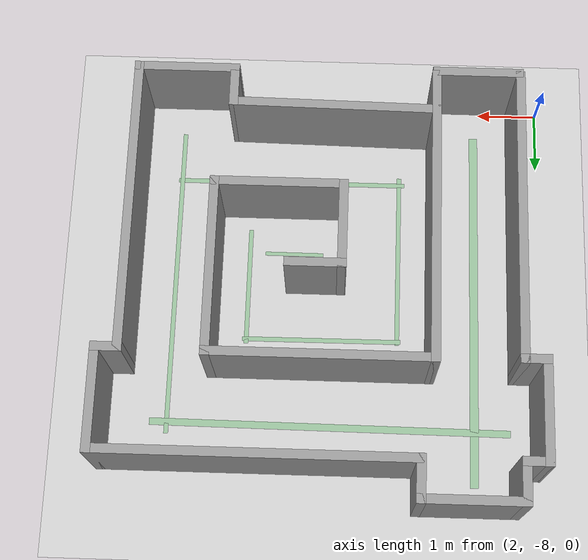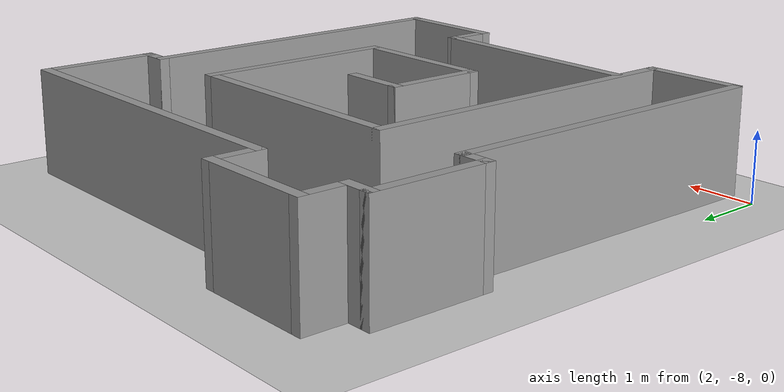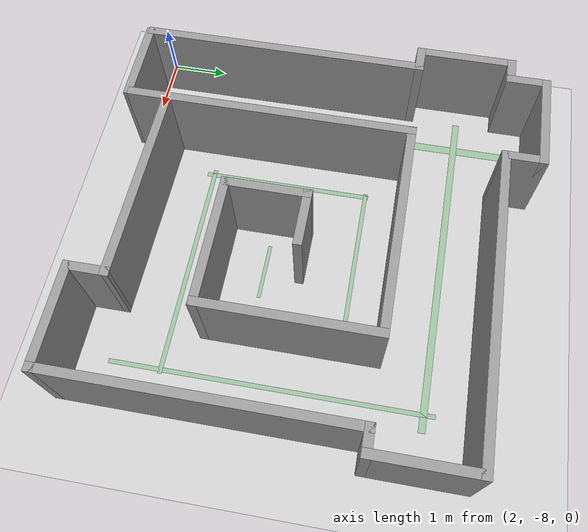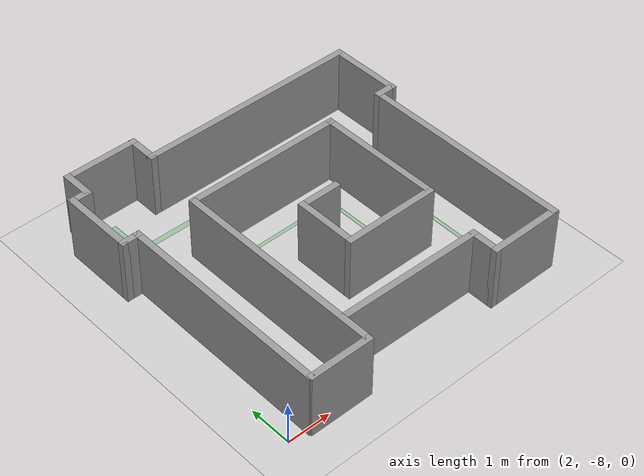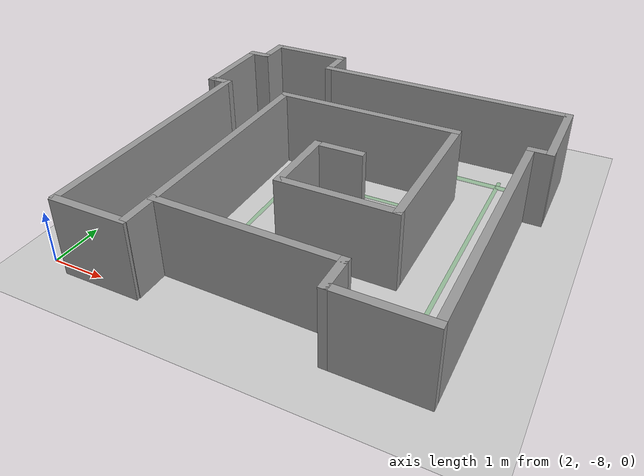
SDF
<sdf version="1.7">
 <world name="default">
  <model name="ground_plane">
   <static>1</static>
   <link name="link">
    <collision name="collision">
     <geometry><plane><normal>0 0 1</normal><size>100 100</size></plane></geometry>
     <surface>
      <contact><collide_bitmask>65535</collide_bitmask></contact>
      <friction><ode><mu>100</mu><mu2>50</mu2></ode></friction>
     </surface>
    </collision>
    <visual name="visual">
     <cast_shadows>0</cast_shadows>
     <geometry><plane><normal>0 0 1</normal><size>100 100</size></plane></geometry>
     <material>
      <script><uri>file://media/materials/scripts/gazebo.material</uri><name>Gazebo/Grey</name></script>
     </material>
    </visual>
   </link>
  </model>
  <model name="map_1">
   <pose>5.62551 -4.52661 0 0 -0 0</pose>
   <link name="Wall_0">
    <collision name="Wall_0_Collision">
     <geometry><box><size>5 0.15 1.5</size></box></geometry>
     <pose>0 0 0.75 0 -0 0</pose>
    </collision>
    <visual name="Wall_0_Visual">
     <pose>0 0 0.75 0 -0 0</pose>
     <geometry><box><size>5 0.15 1.5</size></box></geometry>
     <material>
      <script><uri>file://media/materials/scripts/gazebo.material</uri><name>Gazebo/Grey</name></script>
      <ambient>1 1 1 1</ambient>
     </material>
     <meta><layer>0</layer></meta>
    </visual>
    <pose>-3.175 -1.10709 0 0 -0 1.5708</pose>
   </link>
   <link name="Wall_1">
    <collision name="Wall_1_Collision">
     <geometry><box><size>0.5 0.15 1.5</size></box></geometry>
     <pose>0 0 0.75 0 -0 0</pose>
    </collision>
    <visual name="Wall_1_Visual">
     <pose>0 0 0.75 0 -0 0</pose>
     <geometry><box><size>0.5 0.15 1.5</size></box></geometry>
     <material>
      <script><uri>file://media/materials/scripts/gazebo.material</uri><name>Gazebo/Grey</name></script>
      <ambient>1 1 1 1</ambient>
     </material>
     <meta><layer>0</layer></meta>
    </visual>
    <pose>-3.35 1.31791 0 0 -0 3.14159</pose>
   </link>
   <link name="Wall_10">
    <collision name="Wall_10_Collision">
     <geometry><box><size>5.25 0.15 1.5</size></box></geometry>
     <pose>0 0 0.75 0 -0 0</pose>
    </collision>
    <visual name="Wall_10_Visual">
     <pose>0 0 0.75 0 -0 0</pose>
     <geometry><box><size>5.25 0.15 1.5</size></box></geometry>
     <material>
      <script><uri>file://media/materials/scripts/gazebo.material</uri><name>Gazebo/Grey</name></script>
      <ambient>1 1 1 1</ambient>
     </material>
     <meta><layer>0</layer></meta>
    </visual>
    <pose>0.975 2.91791 0 0 -0 0</pose>
   </link>
   <link name="Wall_11">
    <collision name="Wall_11_Collision">
     <geometry><box><size>1.75 0.15 1.5</size></box></geometry>
     <pose>0 0 0.75 0 -0 0</pose>
    </collision>
    <visual name="Wall_11_Visual">
     <pose>0 0 0.75 0 -0 0</pose>
     <geometry><box><size>1.75 0.15 1.5</size></box></geometry>
     <material>
      <script><uri>file://media/materials/scripts/gazebo.material</uri><name>Gazebo/Grey</name></script>
      <ambient>1 1 1 1</ambient>
     </material>
     <meta><layer>0</layer></meta>
    </visual>
    <pose>3.525 2.11791 0 0 -0 -1.5708</pose>
   </link>
   <link name="Wall_12">
    <collision name="Wall_12_Collision">
     <geometry><box><size>0.5 0.15 1.5</size></box></geometry>
     <pose>0 0 0.75 0 -0 0</pose>
    </collision>
    <visual name="Wall_12_Visual">
     <pose>0 0 0.75 0 -0 0</pose>
     <geometry><box><size>0.5 0.15 1.5</size></box></geometry>
     <material>
      <script><uri>file://media/materials/scripts/gazebo.material</uri><name>Gazebo/Grey</name></script>
      <ambient>1 1 1 1</ambient>
     </material>
     <meta><layer>0</layer></meta>
    </visual>
    <pose>3.35 1.31791 0 0 -0 3.14159</pose>
   </link>
   <link name="Wall_13">
    <collision name="Wall_13_Collision">
     <geometry><box><size>5 0.15 1.5</size></box></geometry>
     <pose>0 0 0.75 0 -0 0</pose>
    </collision>
    <visual name="Wall_13_Visual">
     <pose>0 0 0.75 0 -0 0</pose>
     <geometry><box><size>5 0.15 1.5</size></box></geometry>
     <material>
      <script><uri>file://media/materials/scripts/gazebo.material</uri><name>Gazebo/Grey</name></script>
      <ambient>1 1 1 1</ambient>
     </material>
     <meta><layer>0</layer></meta>
    </visual>
    <pose>3.175 -1.10709 0 0 -0 -1.5708</pose>
   </link>
   <link name="Wall_14">
    <collision name="Wall_14_Collision">
     <geometry><box><size>1.75 0.15 1.5</size></box></geometry>
     <pose>0 0 0.75 0 -0 0</pose>
    </collision>
    <visual name="Wall_14_Visual">
     <pose>0 0 0.75 0 -0 0</pose>
     <geometry><box><size>1.75 0.15 1.5</size></box></geometry>
     <material>
      <script><uri>file://media/materials/scripts/gazebo.material</uri><name>Gazebo/Grey</name></script>
      <ambient>1 1 1 1</ambient>
     </material>
     <meta><layer>0</layer></meta>
    </visual>
    <pose>2.375 -3.53209 0 0 -0 3.14159</pose>
   </link>
   <link name="Wall_15">
    <collision name="Wall_15_Collision">
     <geometry><box><size>0.75 0.15 1.5</size></box></geometry>
     <pose>0 0 0.75 0 -0 0</pose>
    </collision>
    <visual name="Wall_15_Visual">
     <pose>0 0 0.75 0 -0 0</pose>
     <geometry><box><size>0.75 0.15 1.5</size></box></geometry>
     <material>
      <script><uri>file://media/materials/scripts/gazebo.material</uri><name>Gazebo/Grey</name></script>
      <ambient>1 1 1 1</ambient>
     </material>
     <meta><layer>0</layer></meta>
    </visual>
    <pose>1.575 -3.23209 0 0 -0 1.5708</pose>
   </link>
   <link name="Wall_18">
    <collision name="Wall_18_Collision">
     <geometry><box><size>5 0.15 1.5</size></box></geometry>
     <pose>0 0 0.75 0 -0 0</pose>
    </collision>
    <visual name="Wall_18_Visual">
     <pose>0 0 0.75 0 -0 0</pose>
     <geometry><box><size>5 0.15 1.5</size></box></geometry>
     <material>
      <script><uri>file://media/materials/scripts/gazebo.material</uri><name>Gazebo/Grey</name></script>
      <ambient>1 1 1 1</ambient>
     </material>
     <meta><layer>0</layer></meta>
    </visual>
    <pose>-1.787 -1.08609 0 0 -0 1.5708</pose>
   </link>
   <link name="Wall_19">
    <collision name="Wall_19_Collision">
     <geometry><box><size>3.75 0.15 1.5</size></box></geometry>
     <pose>0 0 0.75 0 -0 0</pose>
    </collision>
    <visual name="Wall_19_Visual">
     <pose>0 0 0.75 0 -0 0</pose>
     <geometry><box><size>3.75 0.15 1.5</size></box></geometry>
     <material>
      <script><uri>file://media/materials/scripts/gazebo.material</uri><name>Gazebo/Grey</name></script>
      <ambient>1 1 1 1</ambient>
     </material>
     <meta><layer>0</layer></meta>
    </visual>
    <pose>0.013 1.33891 0 0 -0 0</pose>
   </link>
   <link name="Wall_2">
    <collision name="Wall_2_Collision">
     <geometry><box><size>1.75 0.15 1.5</size></box></geometry>
     <pose>0 0 0.75 0 -0 0</pose>
    </collision>
    <visual name="Wall_2_Visual">
     <pose>0 0 0.75 0 -0 0</pose>
     <geometry><box><size>1.75 0.15 1.5</size></box></geometry>
     <material>
      <script><uri>file://media/materials/scripts/gazebo.material</uri><name>Gazebo/Grey</name></script>
      <ambient>1 1 1 1</ambient>
     </material>
     <meta><layer>0</layer></meta>
    </visual>
    <pose>-3.525 2.11791 0 0 -0 1.5708</pose>
   </link>
   <link name="Wall_20">
    <collision name="Wall_20_Collision">
     <geometry><box><size>3 0.15 1.5</size></box></geometry>
     <pose>0 0 0.75 0 -0 0</pose>
    </collision>
    <visual name="Wall_20_Visual">
     <pose>0 0 0.75 0 -0 0</pose>
     <geometry><box><size>3 0.15 1.5</size></box></geometry>
     <material>
      <script><uri>file://media/materials/scripts/gazebo.material</uri><name>Gazebo/Grey</name></script>
      <ambient>1 1 1 1</ambient>
     </material>
     <meta><layer>0</layer></meta>
    </visual>
    <pose>1.813 -0.086086 0 0 -0 -1.5708</pose>
   </link>
   <link name="Wall_21">
    <collision name="Wall_21_Collision">
     <geometry><box><size>2.25 0.15 1.5</size></box></geometry>
     <pose>0 0 0.75 0 -0 0</pose>
    </collision>
    <visual name="Wall_21_Visual">
     <pose>0 0 0.75 0 -0 0</pose>
     <geometry><box><size>2.25 0.15 1.5</size></box></geometry>
     <material>
      <script><uri>file://media/materials/scripts/gazebo.material</uri><name>Gazebo/Grey</name></script>
      <ambient>1 1 1 1</ambient>
     </material>
     <meta><layer>0</layer></meta>
    </visual>
    <pose>0.763 -1.51109 0 0 -0 3.14159</pose>
   </link>
   <link name="Wall_22">
    <collision name="Wall_22_Collision">
     <geometry><box><size>1.5 0.15 1.5</size></box></geometry>
     <pose>0 0 0.75 0 -0 0</pose>
    </collision>
    <visual name="Wall_22_Visual">
     <pose>0 0 0.75 0 -0 0</pose>
     <geometry><box><size>1.5 0.15 1.5</size></box></geometry>
     <material>
      <script><uri>file://media/materials/scripts/gazebo.material</uri><name>Gazebo/Grey</name></script>
      <ambient>1 1 1 1</ambient>
     </material>
     <meta><layer>0</layer></meta>
    </visual>
    <pose>-0.287 -0.836086 0 0 -0 1.5708</pose>
   </link>
   <link name="Wall_23">
    <collision name="Wall_23_Collision">
     <geometry><box><size>1 0.15 1.5</size></box></geometry>
     <pose>0 0 0.75 0 -0 0</pose>
    </collision>
    <visual name="Wall_23_Visual">
     <pose>0 0 0.75 0 -0 0</pose>
     <geometry><box><size>1 0.15 1.5</size></box></geometry>
     <material>
      <script><uri>file://media/materials/scripts/gazebo.material</uri><name>Gazebo/Grey</name></script>
      <ambient>1 1 1 1</ambient>
     </material>
     <meta><layer>0</layer></meta>
    </visual>
    <pose>0.138 -0.161086 0 0 -0 0</pose>
   </link>
   <link name="Wall_25">
    <collision name="Wall_25_Collision">
     <geometry><box><size>3.49004 0.15 1.5</size></box></geometry>
     <pose>0 0 0.75 0 -0 0</pose>
    </collision>
    <visual name="Wall_25_Visual">
     <pose>0 0 0.75 0 -0 0</pose>
     <geometry><box><size>3.49004 0.15 1.5</size></box></geometry>
     <material>
      <script><uri>file://media/materials/scripts/gazebo.material</uri><name>Gazebo/Grey</name></script>
      <ambient>1 1 1 1</ambient>
     </material>
     <meta><layer>0</layer></meta>
    </visual>
    <pose>-0.0945 -2.90709 0 0 -0 -0.014973</pose>
   </link>
   <link name="Wall_3">
    <collision name="Wall_3_Collision">
     <geometry><box><size>0.5 0.15 1.5</size></box></geometry>
     <pose>0 0 0.75 0 -0 0</pose>
    </collision>
    <visual name="Wall_3_Visual">
     <pose>0 0 0.75 0 -0 0</pose>
     <geometry><box><size>0.5 0.15 1.5</size></box></geometry>
     <material>
      <script><uri>file://media/materials/scripts/gazebo.material</uri><name>Gazebo/Grey</name></script>
      <ambient>1 1 1 1</ambient>
     </material>
     <meta><layer>0</layer></meta>
    </visual>
    <pose>-3.35 2.91791 0 0 -0 0</pose>
   </link>
   <link name="Wall_7">
    <collision name="Wall_7_Collision">
     <geometry><box><size>0.764 0.15 1.5</size></box></geometry>
     <pose>0 0 0.75 0 -0 0</pose>
    </collision>
    <visual name="Wall_7_Visual">
     <pose>0 0 0.75 0 -0 0</pose>
     <geometry><box><size>0.764 0.15 1.5</size></box></geometry>
     <material>
      <script><uri>file://media/materials/scripts/gazebo.material</uri><name>Gazebo/Grey</name></script>
      <ambient>1 1 1 1</ambient>
     </material>
     <meta><layer>0</layer></meta>
    </visual>
    <pose>-3.175 3.22492 0 0 -0 1.5708</pose>
   </link>
   <link name="Wall_8">
    <collision name="Wall_8_Collision">
     <geometry><box><size>1.75 0.15 1.5</size></box></geometry>
     <pose>0 0 0.75 0 -0 0</pose>
    </collision>
    <visual name="Wall_8_Visual">
     <pose>0 0 0.75 0 -0 0</pose>
     <geometry><box><size>1.75 0.15 1.5</size></box></geometry>
     <material>
      <script><uri>file://media/materials/scripts/gazebo.material</uri><name>Gazebo/Grey</name></script>
      <ambient>1 1 1 1</ambient>
     </material>
     <meta><layer>0</layer></meta>
    </visual>
    <pose>-2.375 3.53191 0 0 -0 0</pose>
   </link>
   <link name="Wall_9">
    <collision name="Wall_9_Collision">
     <geometry><box><size>0.764343 0.15 1.5</size></box></geometry>
     <pose>0 0 0.75 0 -0 0</pose>
    </collision>
    <visual name="Wall_9_Visual">
     <pose>0 0 0.75 0 -0 0</pose>
     <geometry><box><size>0.764343 0.15 1.5</size></box></geometry>
     <material>
      <script><uri>file://media/materials/scripts/gazebo.material</uri><name>Gazebo/Grey</name></script>
      <ambient>1 1 1 1</ambient>
     </material>
     <meta><layer>0</layer></meta>
    </visual>
    <pose>-1.575 3.22492 0 0 -0 -1.5708</pose>
   </link>
   <static>1</static>
  </model>
  <model name="wall_chiusura">
   <pose>4.04122 -6.40261 0 0 -0 0</pose>
   <link name="Wall_5">
    <collision name="Wall_5_Collision">
     <geometry><box><size>1.5 0.15 1.5</size></box></geometry>
     <pose>0 0 0.75 0 -0 0</pose>
    </collision>
    <visual name="Wall_5_Visual">
     <pose>0 0 0.75 0 -0 0</pose>
     <geometry><box><size>1.5 0.15 1.5</size></box></geometry>
     <material>
      <script><uri>file://media/materials/scripts/gazebo.material</uri><name>Gazebo/Grey</name></script>
      <ambient>1 1 1 1</ambient>
     </material>
     <meta><layer>0</layer></meta>
    </visual>
    <pose>-0.8875 -1.6975 0 0 -0 0</pose>
   </link>
   <static>1</static>
  </model>
  <model name="map_1_spawn">
   <link name="spawn_1">
    <inertial>
     <mass>0.0217086</mass>
     <inertia>
      <ixx>0.0556801</ixx>
      <ixy>0</ixy>
      <ixz>0</ixz>
      <iyy>7.146e-05</iyy>
      <iyz>0</iyz>
      <izz>0.0557501</izz>
     </inertia>
    </inertial>
    <pose>-2.6628 0.21384 0 0 -0 0</pose>
    <gravity>0</gravity>
    <visual name="visual">
     <geometry><box><size>0.13925 6.14907 0.019742</size></box></geometry>
     <material>
      <lighting>1</lighting>
      <script><uri>file://media/materials/scripts/gazebo.material</uri><name>Gazebo/Green</name></script>
      <shader type="pixel"><normal_map>__default__</normal_map></shader>
      <ambient>0 1 0 1</ambient>
      <diffuse>0 1 0 1</diffuse>
      <specular>0.1 0.1 0.1 1</specular>
      <emissive>0 0 0 1</emissive>
     </material>
     <transparency>0.7</transparency>
    </visual>
   </link>
   <link name="spawn_2">
    <inertial>
     <mass>0.0217086</mass>
     <inertia>
      <ixx>0.0556801</ixx>
      <ixy>0</ixy>
      <ixz>0</ixz>
      <iyy>7.146e-05</iyy>
      <iyz>0</iyz>
      <izz>0.0557501</izz>
     </inertia>
    </inertial>
    <pose>-0.293424 2.36477 0 0 0 -1.57852</pose>
    <gravity>0</gravity>
    <visual name="visual">
     <geometry><box><size>0.114656 5.93564 0.019742</size></box></geometry>
     <material>
      <lighting>1</lighting>
      <script><uri>file://media/materials/scripts/gazebo.material</uri><name>Gazebo/Green</name></script>
      <shader type="pixel"><normal_map>__default__</normal_map></shader>
      <ambient>0 1 0 1</ambient>
      <diffuse>0 1 0 1</diffuse>
      <specular>0.1 0.1 0.1 1</specular>
      <emissive>0 0 0 1</emissive>
     </material>
     <transparency>0.7</transparency>
    </visual>
   </link>
   <link name="spawn_3">
    <inertial>
     <mass>0.0217086</mass>
     <inertia>
      <ixx>0.0556801</ixx>
      <ixy>0</ixy>
      <ixz>0</ixz>
      <iyy>7.146e-05</iyy>
      <iyz>0</iyz>
      <izz>0.0557501</izz>
     </inertia>
    </inertial>
    <pose>2.39206 -0.132071 0 0 -0 0</pose>
    <gravity>0</gravity>
    <visual name="visual">
     <geometry><box><size>0.07165 5.33323 0.019742</size></box></geometry>
     <material>
      <lighting>1</lighting>
      <script><uri>file://media/materials/scripts/gazebo.material</uri><name>Gazebo/Green</name></script>
      <shader type="pixel"><normal_map>__default__</normal_map></shader>
      <ambient>0 1 0 1</ambient>
      <diffuse>0 1 0 1</diffuse>
      <specular>0.1 0.1 0.1 1</specular>
      <emissive>0 0 0 1</emissive>
     </material>
     <transparency>0.7</transparency>
    </visual>
   </link>
   <link name="spawn_4">
    <inertial>
     <mass>0.0217086</mass>
     <inertia>
      <ixx>0.0556801</ixx>
      <ixy>0</ixy>
      <ixz>0</ixz>
      <iyy>7.146e-05</iyy>
      <iyz>0</iyz>
      <izz>0.0557501</izz>
     </inertia>
    </inertial>
    <pose>0.493897 -1.93364 0 0 -0 1.57253</pose>
    <gravity>0</gravity>
    <visual name="visual">
     <geometry><box><size>0.07165 3.91941 0.019742</size></box></geometry>
     <material>
      <lighting>1</lighting>
      <script><uri>file://media/materials/scripts/gazebo.material</uri><name>Gazebo/Green</name></script>
      <shader type="pixel"><normal_map>__default__</normal_map></shader>
      <ambient>0 1 0 1</ambient>
      <diffuse>0 1 0 1</diffuse>
      <specular>0.1 0.1 0.1 1</specular>
      <emissive>0 0 0 1</emissive>
     </material>
     <transparency>0.7</transparency>
    </visual>
   </link>
   <link name="spawn_5">
    <inertial>
     <mass>0.0217086</mass>
     <inertia>
      <ixx>0.0556801</ixx>
      <ixy>0</ixy>
      <ixz>0</ixz>
      <iyy>7.146e-05</iyy>
      <iyz>0</iyz>
      <izz>0.0557501</izz>
     </inertia>
    </inertial>
    <pose>-1.37156 -0.565564 0 0 -0 0</pose>
    <gravity>0</gravity>
    <visual name="visual">
     <geometry><box><size>0.07165 3.00443 0.019742</size></box></geometry>
     <material>
      <lighting>1</lighting>
      <script><uri>file://media/materials/scripts/gazebo.material</uri><name>Gazebo/Green</name></script>
      <shader type="pixel"><normal_map>__default__</normal_map></shader>
      <ambient>0 1 0 1</ambient>
      <diffuse>0 1 0 1</diffuse>
      <specular>0.1 0.1 0.1 1</specular>
      <emissive>0 0 0 1</emissive>
     </material>
     <transparency>0.7</transparency>
    </visual>
   </link>
   <link name="spawn_6">
    <inertial>
     <mass>0.0217086</mass>
     <inertia>
      <ixx>0.0556801</ixx>
      <ixy>0</ixy>
      <ixz>0</ixz>
      <iyy>7.146e-05</iyy>
      <iyz>0</iyz>
      <izz>0.0557501</izz>
     </inertia>
    </inertial>
    <pose>1.15079 -0.034248 0 0 -0 0</pose>
    <gravity>0</gravity>
    <visual name="visual">
     <geometry><box><size>0.07165 2.01062 0.019742</size></box></geometry>
     <material>
      <lighting>1</lighting>
      <script><uri>file://media/materials/scripts/gazebo.material</uri><name>Gazebo/Green</name></script>
      <shader type="pixel"><normal_map>__default__</normal_map></shader>
      <ambient>0 1 0 1</ambient>
      <diffuse>0 1 0 1</diffuse>
      <specular>0.1 0.1 0.1 1</specular>
      <emissive>0 0 0 1</emissive>
     </material>
     <transparency>0.7</transparency>
    </visual>
   </link>
   <link name="spawn_7">
    <inertial>
     <mass>0.0217086</mass>
     <inertia>
      <ixx>0.0556801</ixx>
      <ixy>0</ixy>
      <ixz>0</ixz>
      <iyy>7.146e-05</iyy>
      <iyz>0</iyz>
      <izz>0.0557501</izz>
     </inertia>
    </inertial>
    <pose>0.397758 -0.623377 0 0 -0 1.56719</pose>
    <gravity>0</gravity>
    <visual name="visual">
     <geometry><box><size>0.05862 0.979625 0.019742</size></box></geometry>
     <material>
      <lighting>1</lighting>
      <script><uri>file://media/materials/scripts/gazebo.material</uri><name>Gazebo/Green</name></script>
      <shader type="pixel"><normal_map>__default__</normal_map></shader>
      <ambient>0 1 0 1</ambient>
      <diffuse>0 1 0 1</diffuse>
      <specular>0.1 0.1 0.1 1</specular>
      <emissive>0 0 0 1</emissive>
     </material>
     <transparency>0.7</transparency>
    </visual>
   </link>
   <link name="spawn_8">
    <inertial>
     <mass>0.0217086</mass>
     <inertia>
      <ixx>0.0556801</ixx>
      <ixy>0</ixy>
      <ixz>0</ixz>
      <iyy>7.146e-05</iyy>
      <iyz>0</iyz>
      <izz>0.0557501</izz>
     </inertia>
    </inertial>
    <pose>-0.106085 0.888692 0 0 -0 1.57519</pose>
    <gravity>0</gravity>
    <visual name="visual">
     <geometry><box><size>0.07165 2.65164 0.019742</size></box></geometry>
     <material>
      <lighting>1</lighting>
      <script><uri>file://media/materials/scripts/gazebo.material</uri><name>Gazebo/Green</name></script>
      <shader type="pixel"><normal_map>__default__</normal_map></shader>
      <ambient>0 1 0 1</ambient>
      <diffuse>0 1 0 1</diffuse>
      <specular>0.1 0.1 0.1 1</specular>
      <emissive>0 0 0 1</emissive>
     </material>
     <transparency>0.7</transparency>
    </visual>
   </link>
   <static>1</static>
   <pose>5.74909 -4.69174 0 0 -0 0</pose>
  </model>
 </world>
</sdf>
